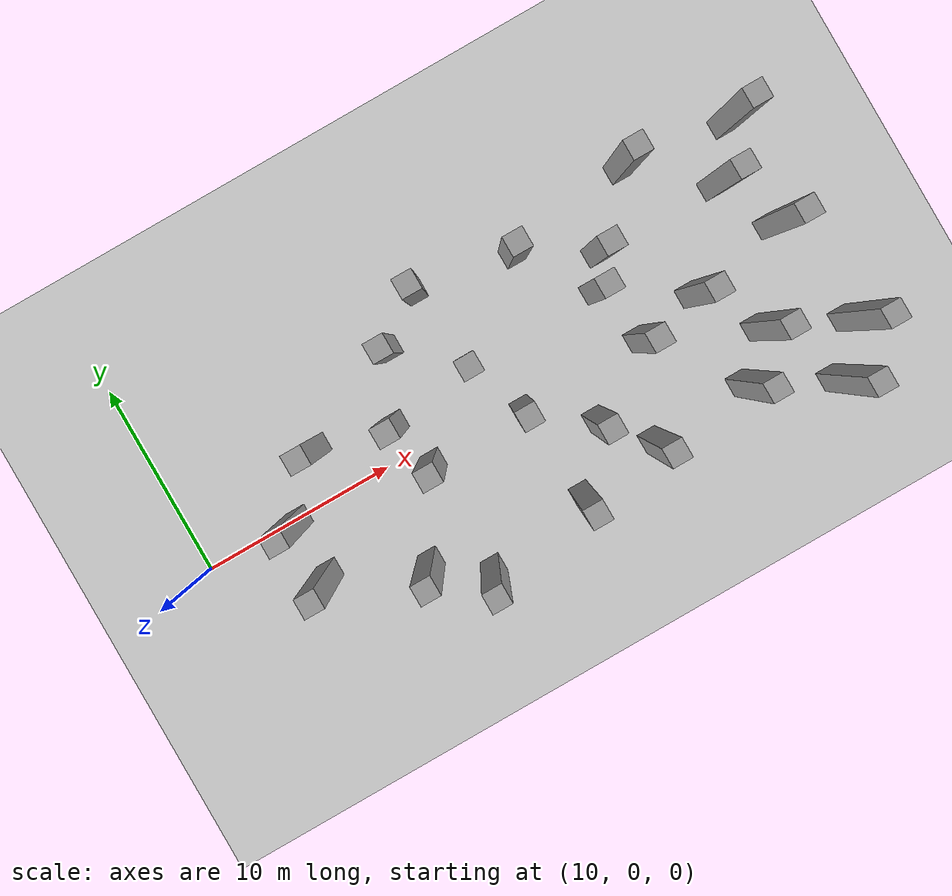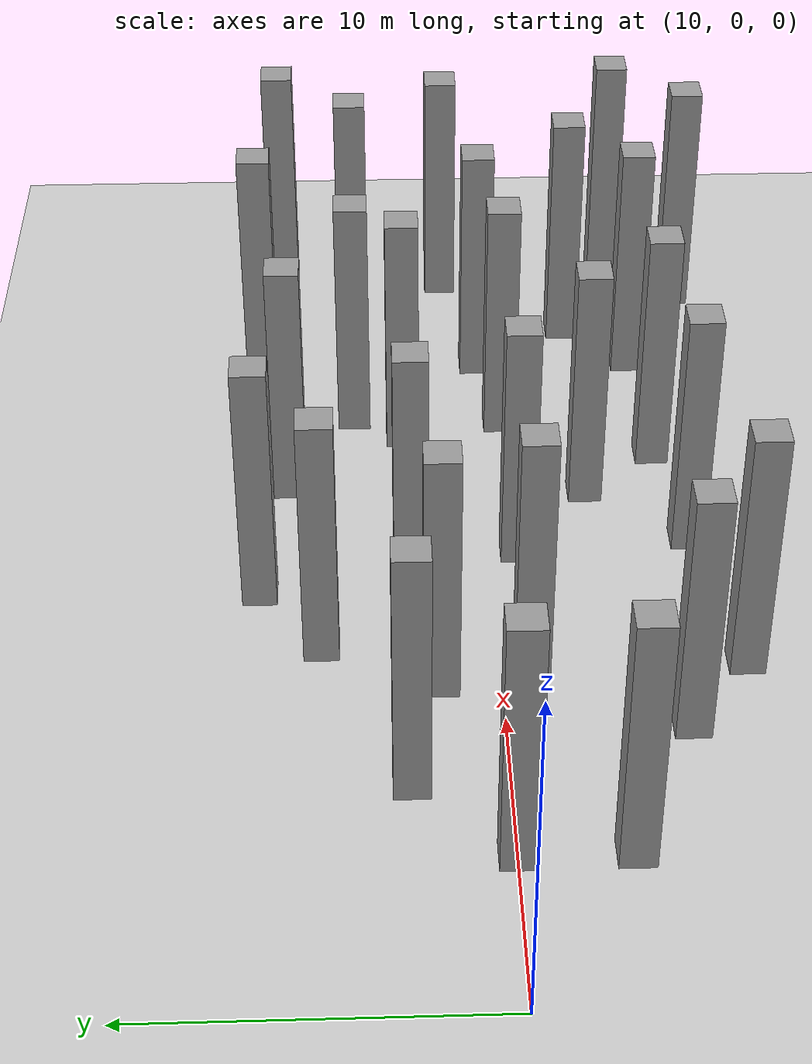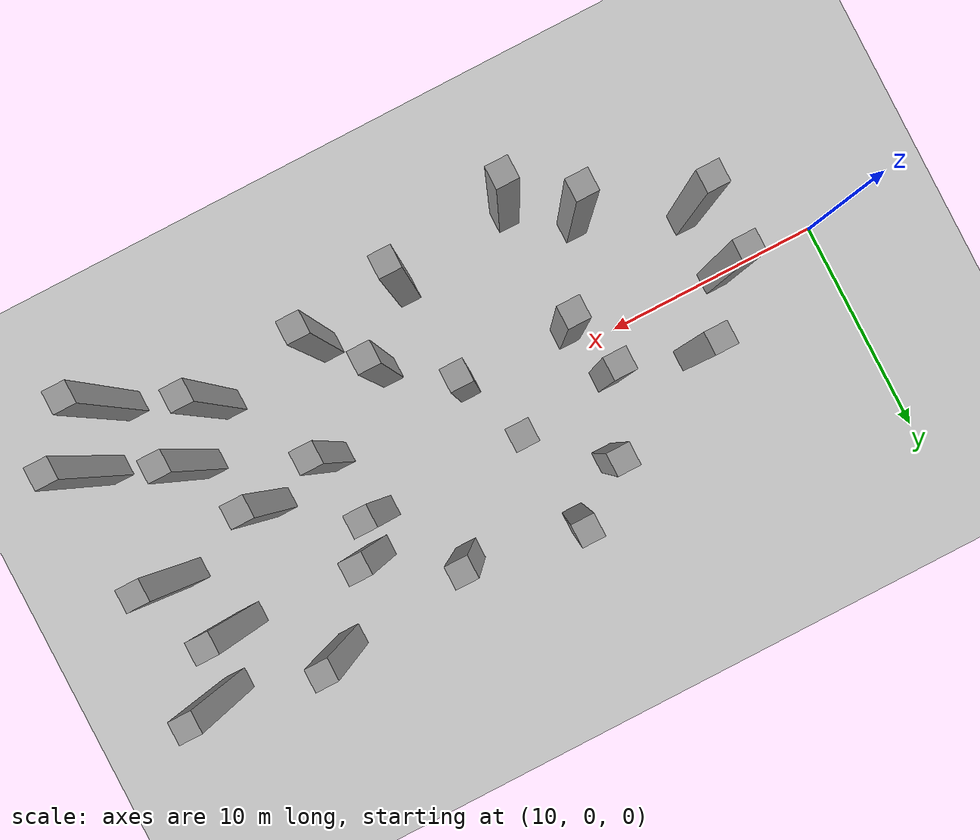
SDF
<sdf version="1.7">
 <world name="default">
  <model name="ground_plane">
   <static>1</static>
   <link name="link">
    <collision name="collision">
     <geometry><plane><normal>0 0 1</normal><size>100 100</size></plane></geometry>
     <surface>
      <contact><collide_bitmask>65535</collide_bitmask></contact>
      <friction><ode><mu>100</mu><mu2>50</mu2></ode></friction>
     </surface>
    </collision>
    <visual name="visual">
     <cast_shadows>0</cast_shadows>
     <geometry><plane><normal>0 0 1</normal><size>100 100</size></plane></geometry>
     <material>
      <script><uri>file://media/materials/scripts/gazebo.material</uri><name>Gazebo/Grey</name></script>
     </material>
    </visual>
   </link>
  </model>
  <model name="unit_box_static41">
   <link name="link">
    <inertial>
     <mass>1</mass>
     <inertia>
      <ixx>0.166667</ixx>
      <ixy>0</ixy>
      <ixz>0</ixz>
      <iyy>0.166667</iyy>
      <iyz>0</iyz>
      <izz>0.166667</izz>
     </inertia>
    </inertial>
    <visual name="visual">
     <geometry><box><size>1 1 8</size></box></geometry>
     <material>
      <script><name>Gazebo/Grey</name><uri>file://media/materials/scripts/gazebo.material</uri></script>
      <shader type="pixel"/>
     </material>
    </visual>
    <collision name="collision">
     <geometry><box><size>1 1 8</size></box></geometry>
     <surface>
      <friction>
       <ode><mu>1</mu><mu2>1</mu2><fdir1>0 0 0</fdir1><slip1>0</slip1><slip2>0</slip2></ode>
       <torsional>
        <coefficient>1</coefficient>
        <patch_radius>0</patch_radius>
        <surface_radius>0</surface_radius>
        <use_patch_radius>1</use_patch_radius>
        <ode><slip>0</slip></ode>
       </torsional>
      </friction>
      <bounce><restitution_coefficient>0</restitution_coefficient><threshold>1e+06</threshold></bounce>
      <contact>
       <collide_without_contact>0</collide_without_contact>
       <collide_without_contact_bitmask>1</collide_without_contact_bitmask>
       <collide_bitmask>1</collide_bitmask>
       <ode>
        <soft_cfm>0</soft_cfm>
        <soft_erp>0.2</soft_erp>
        <kp>1e+13</kp>
        <kd>1</kd>
        <max_vel>0.01</max_vel>
        <min_depth>0</min_depth>
       </ode>
       <bullet>
        <split_impulse>1</split_impulse>
        <split_impulse_penetration_threshold>-0.01</split_impulse_penetration_threshold>
        <soft_cfm>0</soft_cfm>
        <soft_erp>0.2</soft_erp>
        <kp>1e+13</kp>
        <kd>1</kd>
       </bullet>
      </contact>
     </surface>
    </collision>
   </link>
   <static>1</static>
   <pose>27.6141 -5.86345 4 0 -0 0</pose>
  </model>
  <model name="unit_box_static43">
   <link name="link">
    <inertial>
     <mass>1</mass>
     <inertia>
      <ixx>0.166667</ixx>
      <ixy>0</ixy>
      <ixz>0</ixz>
      <iyy>0.166667</iyy>
      <iyz>0</iyz>
      <izz>0.166667</izz>
     </inertia>
    </inertial>
    <visual name="visual">
     <geometry><box><size>1 1 8</size></box></geometry>
     <material>
      <script><name>Gazebo/Grey</name><uri>file://media/materials/scripts/gazebo.material</uri></script>
      <shader type="pixel"/>
     </material>
    </visual>
    <collision name="collision">
     <geometry><box><size>1 1 8</size></box></geometry>
     <surface>
      <friction>
       <ode><mu>1</mu><mu2>1</mu2><fdir1>0 0 0</fdir1><slip1>0</slip1><slip2>0</slip2></ode>
       <torsional>
        <coefficient>1</coefficient>
        <patch_radius>0</patch_radius>
        <surface_radius>0</surface_radius>
        <use_patch_radius>1</use_patch_radius>
        <ode><slip>0</slip></ode>
       </torsional>
      </friction>
      <bounce><restitution_coefficient>0</restitution_coefficient><threshold>1e+06</threshold></bounce>
      <contact>
       <collide_without_contact>0</collide_without_contact>
       <collide_without_contact_bitmask>1</collide_without_contact_bitmask>
       <collide_bitmask>1</collide_bitmask>
       <ode>
        <soft_cfm>0</soft_cfm>
        <soft_erp>0.2</soft_erp>
        <kp>1e+13</kp>
        <kd>1</kd>
        <max_vel>0.01</max_vel>
        <min_depth>0</min_depth>
       </ode>
       <bullet>
        <split_impulse>1</split_impulse>
        <split_impulse_penetration_threshold>-0.01</split_impulse_penetration_threshold>
        <soft_cfm>0</soft_cfm>
        <soft_erp>0.2</soft_erp>
        <kp>1e+13</kp>
        <kd>1</kd>
       </bullet>
      </contact>
     </surface>
    </collision>
   </link>
   <static>1</static>
   <pose>25.4458 6.78885 4 0 -0 0</pose>
  </model>
  <model name="unit_box_static44">
   <link name="link">
    <inertial>
     <mass>1</mass>
     <inertia>
      <ixx>0.166667</ixx>
      <ixy>0</ixy>
      <ixz>0</ixz>
      <iyy>0.166667</iyy>
      <iyz>0</iyz>
      <izz>0.166667</izz>
     </inertia>
    </inertial>
    <visual name="visual">
     <geometry><box><size>1 1 8</size></box></geometry>
     <material>
      <script><name>Gazebo/Grey</name><uri>file://media/materials/scripts/gazebo.material</uri></script>
      <shader type="pixel"/>
     </material>
    </visual>
    <collision name="collision">
     <geometry><box><size>1 1 8</size></box></geometry>
     <surface>
      <friction>
       <ode><mu>1</mu><mu2>1</mu2><fdir1>0 0 0</fdir1><slip1>0</slip1><slip2>0</slip2></ode>
       <torsional>
        <coefficient>1</coefficient>
        <patch_radius>0</patch_radius>
        <surface_radius>0</surface_radius>
        <use_patch_radius>1</use_patch_radius>
        <ode><slip>0</slip></ode>
       </torsional>
      </friction>
      <bounce><restitution_coefficient>0</restitution_coefficient><threshold>1e+06</threshold></bounce>
      <contact>
       <collide_without_contact>0</collide_without_contact>
       <collide_without_contact_bitmask>1</collide_without_contact_bitmask>
       <collide_bitmask>1</collide_bitmask>
       <ode>
        <soft_cfm>0</soft_cfm>
        <soft_erp>0.2</soft_erp>
        <kp>1e+13</kp>
        <kd>1</kd>
        <max_vel>0.01</max_vel>
        <min_depth>0</min_depth>
       </ode>
       <bullet>
        <split_impulse>1</split_impulse>
        <split_impulse_penetration_threshold>-0.01</split_impulse_penetration_threshold>
        <soft_cfm>0</soft_cfm>
        <soft_erp>0.2</soft_erp>
        <kp>1e+13</kp>
        <kd>1</kd>
       </bullet>
      </contact>
     </surface>
    </collision>
   </link>
   <static>1</static>
   <pose>22.0991 -0.844058 4 0 -0 0</pose>
  </model>
  <model name="unit_box_static42_clone_10">
   <link name="link">
    <inertial>
     <mass>1</mass>
     <inertia>
      <ixx>0.166667</ixx>
      <ixy>0</ixy>
      <ixz>0</ixz>
      <iyy>0.166667</iyy>
      <iyz>0</iyz>
      <izz>0.166667</izz>
     </inertia>
    </inertial>
    <visual name="visual">
     <geometry><box><size>1 1 8</size></box></geometry>
     <material>
      <script><name>Gazebo/Grey</name><uri>file://media/materials/scripts/gazebo.material</uri></script>
      <shader type="pixel"/>
     </material>
    </visual>
    <collision name="collision">
     <geometry><box><size>1 1 8</size></box></geometry>
     <surface>
      <friction>
       <ode><mu>1</mu><mu2>1</mu2><fdir1>0 0 0</fdir1><slip1>0</slip1><slip2>0</slip2></ode>
       <torsional>
        <coefficient>1</coefficient>
        <patch_radius>0</patch_radius>
        <surface_radius>0</surface_radius>
        <use_patch_radius>1</use_patch_radius>
        <ode><slip>0</slip></ode>
       </torsional>
      </friction>
      <bounce><restitution_coefficient>0</restitution_coefficient><threshold>1e+06</threshold></bounce>
      <contact>
       <collide_without_contact>0</collide_without_contact>
       <collide_without_contact_bitmask>1</collide_without_contact_bitmask>
       <collide_bitmask>1</collide_bitmask>
       <ode>
        <soft_cfm>0</soft_cfm>
        <soft_erp>0.2</soft_erp>
        <kp>1e+13</kp>
        <kd>1</kd>
        <max_vel>0.01</max_vel>
        <min_depth>0</min_depth>
       </ode>
       <bullet>
        <split_impulse>1</split_impulse>
        <split_impulse_penetration_threshold>-0.01</split_impulse_penetration_threshold>
        <soft_cfm>0</soft_cfm>
        <soft_erp>0.2</soft_erp>
        <kp>1e+13</kp>
        <kd>1</kd>
       </bullet>
      </contact>
     </surface>
    </collision>
   </link>
   <static>1</static>
   <pose>15 -3 4 0 -0 0</pose>
  </model>
  <model name="unit_box_static42_clone_11">
   <link name="link">
    <inertial>
     <mass>1</mass>
     <inertia>
      <ixx>0.166667</ixx>
      <ixy>0</ixy>
      <ixz>0</ixz>
      <iyy>0.166667</iyy>
      <iyz>0</iyz>
      <izz>0.166667</izz>
     </inertia>
    </inertial>
    <visual name="visual">
     <geometry><box><size>1 1 8</size></box></geometry>
     <material>
      <script><name>Gazebo/Grey</name><uri>file://media/materials/scripts/gazebo.material</uri></script>
      <shader type="pixel"/>
     </material>
    </visual>
    <collision name="collision">
     <geometry><box><size>1 1 8</size></box></geometry>
     <surface>
      <friction>
       <ode><mu>1</mu><mu2>1</mu2><fdir1>0 0 0</fdir1><slip1>0</slip1><slip2>0</slip2></ode>
       <torsional>
        <coefficient>1</coefficient>
        <patch_radius>0</patch_radius>
        <surface_radius>0</surface_radius>
        <use_patch_radius>1</use_patch_radius>
        <ode><slip>0</slip></ode>
       </torsional>
      </friction>
      <bounce><restitution_coefficient>0</restitution_coefficient><threshold>1e+06</threshold></bounce>
      <contact>
       <collide_without_contact>0</collide_without_contact>
       <collide_without_contact_bitmask>1</collide_without_contact_bitmask>
       <collide_bitmask>1</collide_bitmask>
       <ode>
        <soft_cfm>0</soft_cfm>
        <soft_erp>0.2</soft_erp>
        <kp>1e+13</kp>
        <kd>1</kd>
        <max_vel>0.01</max_vel>
        <min_depth>0</min_depth>
       </ode>
       <bullet>
        <split_impulse>1</split_impulse>
        <split_impulse_penetration_threshold>-0.01</split_impulse_penetration_threshold>
        <soft_cfm>0</soft_cfm>
        <soft_erp>0.2</soft_erp>
        <kp>1e+13</kp>
        <kd>1</kd>
       </bullet>
      </contact>
     </surface>
    </collision>
   </link>
   <static>1</static>
   <pose>30 -3 4 0 -0 0</pose>
  </model>
  <model name="unit_box_static42_clone_12">
   <link name="link">
    <inertial>
     <mass>1</mass>
     <inertia>
      <ixx>0.166667</ixx>
      <ixy>0</ixy>
      <ixz>0</ixz>
      <iyy>0.166667</iyy>
      <iyz>0</iyz>
      <izz>0.166667</izz>
     </inertia>
    </inertial>
    <visual name="visual">
     <geometry><box><size>1 1 8</size></box></geometry>
     <material>
      <script><name>Gazebo/Grey</name><uri>file://media/materials/scripts/gazebo.material</uri></script>
      <shader type="pixel"/>
     </material>
    </visual>
    <collision name="collision">
     <geometry><box><size>1 1 8</size></box></geometry>
     <surface>
      <friction>
       <ode><mu>1</mu><mu2>1</mu2><fdir1>0 0 0</fdir1><slip1>0</slip1><slip2>0</slip2></ode>
       <torsional>
        <coefficient>1</coefficient>
        <patch_radius>0</patch_radius>
        <surface_radius>0</surface_radius>
        <use_patch_radius>1</use_patch_radius>
        <ode><slip>0</slip></ode>
       </torsional>
      </friction>
      <bounce><restitution_coefficient>0</restitution_coefficient><threshold>1e+06</threshold></bounce>
      <contact>
       <collide_without_contact>0</collide_without_contact>
       <collide_without_contact_bitmask>1</collide_without_contact_bitmask>
       <collide_bitmask>1</collide_bitmask>
       <ode>
        <soft_cfm>0</soft_cfm>
        <soft_erp>0.2</soft_erp>
        <kp>1e+13</kp>
        <kd>1</kd>
        <max_vel>0.01</max_vel>
        <min_depth>0</min_depth>
       </ode>
       <bullet>
        <split_impulse>1</split_impulse>
        <split_impulse_penetration_threshold>-0.01</split_impulse_penetration_threshold>
        <soft_cfm>0</soft_cfm>
        <soft_erp>0.2</soft_erp>
        <kp>1e+13</kp>
        <kd>1</kd>
       </bullet>
      </contact>
     </surface>
    </collision>
   </link>
   <static>1</static>
   <pose>23 5 4 0 -0 0</pose>
  </model>
  <model name="unit_box_static42_clone_13">
   <link name="link">
    <inertial>
     <mass>1</mass>
     <inertia>
      <ixx>0.166667</ixx>
      <ixy>0</ixy>
      <ixz>0</ixz>
      <iyy>0.166667</iyy>
      <iyz>0</iyz>
      <izz>0.166667</izz>
     </inertia>
    </inertial>
    <visual name="visual">
     <geometry><box><size>1 1 8</size></box></geometry>
     <material>
      <script><name>Gazebo/Grey</name><uri>file://media/materials/scripts/gazebo.material</uri></script>
      <shader type="pixel"/>
     </material>
    </visual>
    <collision name="collision">
     <geometry><box><size>1 1 8</size></box></geometry>
     <surface>
      <friction>
       <ode><mu>1</mu><mu2>1</mu2><fdir1>0 0 0</fdir1><slip1>0</slip1><slip2>0</slip2></ode>
       <torsional>
        <coefficient>1</coefficient>
        <patch_radius>0</patch_radius>
        <surface_radius>0</surface_radius>
        <use_patch_radius>1</use_patch_radius>
        <ode><slip>0</slip></ode>
       </torsional>
      </friction>
      <bounce><restitution_coefficient>0</restitution_coefficient><threshold>1e+06</threshold></bounce>
      <contact>
       <collide_without_contact>0</collide_without_contact>
       <collide_without_contact_bitmask>1</collide_without_contact_bitmask>
       <collide_bitmask>1</collide_bitmask>
       <ode>
        <soft_cfm>0</soft_cfm>
        <soft_erp>0.2</soft_erp>
        <kp>1e+13</kp>
        <kd>1</kd>
        <max_vel>0.01</max_vel>
        <min_depth>0</min_depth>
       </ode>
       <bullet>
        <split_impulse>1</split_impulse>
        <split_impulse_penetration_threshold>-0.01</split_impulse_penetration_threshold>
        <soft_cfm>0</soft_cfm>
        <soft_erp>0.2</soft_erp>
        <kp>1e+13</kp>
        <kd>1</kd>
       </bullet>
      </contact>
     </surface>
    </collision>
   </link>
   <static>1</static>
   <pose>26 2.40732 4 0 -0 0</pose>
  </model>
  <model name="unit_box_static42_clone_14">
   <link name="link">
    <inertial>
     <mass>1</mass>
     <inertia>
      <ixx>0.166667</ixx>
      <ixy>0</ixy>
      <ixz>0</ixz>
      <iyy>0.166667</iyy>
      <iyz>0</iyz>
      <izz>0.166667</izz>
     </inertia>
    </inertial>
    <visual name="visual">
     <geometry><box><size>1 1 8</size></box></geometry>
     <material>
      <script><name>Gazebo/Grey</name><uri>file://media/materials/scripts/gazebo.material</uri></script>
      <shader type="pixel"/>
     </material>
    </visual>
    <collision name="collision">
     <geometry><box><size>1 1 8</size></box></geometry>
     <surface>
      <friction>
       <ode><mu>1</mu><mu2>1</mu2><fdir1>0 0 0</fdir1><slip1>0</slip1><slip2>0</slip2></ode>
       <torsional>
        <coefficient>1</coefficient>
        <patch_radius>0</patch_radius>
        <surface_radius>0</surface_radius>
        <use_patch_radius>1</use_patch_radius>
        <ode><slip>0</slip></ode>
       </torsional>
      </friction>
      <bounce><restitution_coefficient>0</restitution_coefficient><threshold>1e+06</threshold></bounce>
      <contact>
       <collide_without_contact>0</collide_without_contact>
       <collide_without_contact_bitmask>1</collide_without_contact_bitmask>
       <collide_bitmask>1</collide_bitmask>
       <ode>
        <soft_cfm>0</soft_cfm>
        <soft_erp>0.2</soft_erp>
        <kp>1e+13</kp>
        <kd>1</kd>
        <max_vel>0.01</max_vel>
        <min_depth>0</min_depth>
       </ode>
       <bullet>
        <split_impulse>1</split_impulse>
        <split_impulse_penetration_threshold>-0.01</split_impulse_penetration_threshold>
        <soft_cfm>0</soft_cfm>
        <soft_erp>0.2</soft_erp>
        <kp>1e+13</kp>
        <kd>1</kd>
       </bullet>
      </contact>
     </surface>
    </collision>
   </link>
   <static>1</static>
   <pose>15 0 4 0 -0 0</pose>
  </model>
  <model name="unit_box_static42_clone_33">
   <link name="link">
    <inertial>
     <mass>1</mass>
     <inertia>
      <ixx>0.166667</ixx>
      <ixy>0</ixy>
      <ixz>0</ixz>
      <iyy>0.166667</iyy>
      <iyz>0</iyz>
      <izz>0.166667</izz>
     </inertia>
    </inertial>
    <visual name="visual">
     <geometry><box><size>1 1 8</size></box></geometry>
     <material>
      <script><name>Gazebo/Grey</name><uri>file://media/materials/scripts/gazebo.material</uri></script>
      <shader type="pixel"/>
     </material>
    </visual>
    <collision name="collision">
     <geometry><box><size>1 1 8</size></box></geometry>
     <surface>
      <friction>
       <ode><mu>1</mu><mu2>1</mu2><fdir1>0 0 0</fdir1><slip1>0</slip1><slip2>0</slip2></ode>
       <torsional>
        <coefficient>1</coefficient>
        <patch_radius>0</patch_radius>
        <surface_radius>0</surface_radius>
        <use_patch_radius>1</use_patch_radius>
        <ode><slip>0</slip></ode>
       </torsional>
      </friction>
      <bounce><restitution_coefficient>0</restitution_coefficient><threshold>1e+06</threshold></bounce>
      <contact>
       <collide_without_contact>0</collide_without_contact>
       <collide_without_contact_bitmask>1</collide_without_contact_bitmask>
       <collide_bitmask>1</collide_bitmask>
       <ode>
        <soft_cfm>0</soft_cfm>
        <soft_erp>0.2</soft_erp>
        <kp>1e+13</kp>
        <kd>1</kd>
        <max_vel>0.01</max_vel>
        <min_depth>0</min_depth>
       </ode>
       <bullet>
        <split_impulse>1</split_impulse>
        <split_impulse_penetration_threshold>-0.01</split_impulse_penetration_threshold>
        <soft_cfm>0</soft_cfm>
        <soft_erp>0.2</soft_erp>
        <kp>1e+13</kp>
        <kd>1</kd>
       </bullet>
      </contact>
     </surface>
    </collision>
   </link>
   <static>1</static>
   <pose>22.0812 -6.82551 4 0 -0 0</pose>
  </model>
  <model name="unit_box_static42_clone_34">
   <link name="link">
    <inertial>
     <mass>1</mass>
     <inertia>
      <ixx>0.166667</ixx>
      <ixy>0</ixy>
      <ixz>0</ixz>
      <iyy>0.166667</iyy>
      <iyz>0</iyz>
      <izz>0.166667</izz>
     </inertia>
    </inertial>
    <visual name="visual">
     <geometry><box><size>1 1 8</size></box></geometry>
     <material>
      <script><name>Gazebo/Grey</name><uri>file://media/materials/scripts/gazebo.material</uri></script>
      <shader type="pixel"/>
     </material>
    </visual>
    <collision name="collision">
     <geometry><box><size>1 1 8</size></box></geometry>
     <surface>
      <friction>
       <ode><mu>1</mu><mu2>1</mu2><fdir1>0 0 0</fdir1><slip1>0</slip1><slip2>0</slip2></ode>
       <torsional>
        <coefficient>1</coefficient>
        <patch_radius>0</patch_radius>
        <surface_radius>0</surface_radius>
        <use_patch_radius>1</use_patch_radius>
        <ode><slip>0</slip></ode>
       </torsional>
      </friction>
      <bounce><restitution_coefficient>0</restitution_coefficient><threshold>1e+06</threshold></bounce>
      <contact>
       <collide_without_contact>0</collide_without_contact>
       <collide_without_contact_bitmask>1</collide_without_contact_bitmask>
       <collide_bitmask>1</collide_bitmask>
       <ode>
        <soft_cfm>0</soft_cfm>
        <soft_erp>0.2</soft_erp>
        <kp>1e+13</kp>
        <kd>1</kd>
        <max_vel>0.01</max_vel>
        <min_depth>0</min_depth>
       </ode>
       <bullet>
        <split_impulse>1</split_impulse>
        <split_impulse_penetration_threshold>-0.01</split_impulse_penetration_threshold>
        <soft_cfm>0</soft_cfm>
        <soft_erp>0.2</soft_erp>
        <kp>1e+13</kp>
        <kd>1</kd>
       </bullet>
      </contact>
     </surface>
    </collision>
   </link>
   <static>1</static>
   <pose>19.589 -5 4 0 -0 0</pose>
  </model>
  <model name="unit_box_static42_clone_35">
   <link name="link">
    <inertial>
     <mass>1</mass>
     <inertia>
      <ixx>0.166667</ixx>
      <ixy>0</ixy>
      <ixz>0</ixz>
      <iyy>0.166667</iyy>
      <iyz>0</iyz>
      <izz>0.166667</izz>
     </inertia>
    </inertial>
    <visual name="visual">
     <geometry><box><size>1 1 8</size></box></geometry>
     <material>
      <script><name>Gazebo/Grey</name><uri>file://media/materials/scripts/gazebo.material</uri></script>
      <shader type="pixel"/>
     </material>
    </visual>
    <collision name="collision">
     <geometry><box><size>1 1 8</size></box></geometry>
     <surface>
      <friction>
       <ode><mu>1</mu><mu2>1</mu2><fdir1>0 0 0</fdir1><slip1>0</slip1><slip2>0</slip2></ode>
       <torsional>
        <coefficient>1</coefficient>
        <patch_radius>0</patch_radius>
        <surface_radius>0</surface_radius>
        <use_patch_radius>1</use_patch_radius>
        <ode><slip>0</slip></ode>
       </torsional>
      </friction>
      <bounce><restitution_coefficient>0</restitution_coefficient><threshold>1e+06</threshold></bounce>
      <contact>
       <collide_without_contact>0</collide_without_contact>
       <collide_without_contact_bitmask>1</collide_without_contact_bitmask>
       <collide_bitmask>1</collide_bitmask>
       <ode>
        <soft_cfm>0</soft_cfm>
        <soft_erp>0.2</soft_erp>
        <kp>1e+13</kp>
        <kd>1</kd>
        <max_vel>0.01</max_vel>
        <min_depth>0</min_depth>
       </ode>
       <bullet>
        <split_impulse>1</split_impulse>
        <split_impulse_penetration_threshold>-0.01</split_impulse_penetration_threshold>
        <soft_cfm>0</soft_cfm>
        <soft_erp>0.2</soft_erp>
        <kp>1e+13</kp>
        <kd>1</kd>
       </bullet>
      </contact>
     </surface>
    </collision>
   </link>
   <static>1</static>
   <pose>34 4 4 0 -0 0</pose>
  </model>
  <model name="unit_box_static42_clone_36">
   <link name="link">
    <inertial>
     <mass>1</mass>
     <inertia>
      <ixx>0.166667</ixx>
      <ixy>0</ixy>
      <ixz>0</ixz>
      <iyy>0.166667</iyy>
      <iyz>0</iyz>
      <izz>0.166667</izz>
     </inertia>
    </inertial>
    <visual name="visual">
     <geometry><box><size>1 1 8</size></box></geometry>
     <material>
      <script><name>Gazebo/Grey</name><uri>file://media/materials/scripts/gazebo.material</uri></script>
      <shader type="pixel"/>
     </material>
    </visual>
    <collision name="collision">
     <geometry><box><size>1 1 8</size></box></geometry>
     <surface>
      <friction>
       <ode><mu>1</mu><mu2>1</mu2><fdir1>0 0 0</fdir1><slip1>0</slip1><slip2>0</slip2></ode>
       <torsional>
        <coefficient>1</coefficient>
        <patch_radius>0</patch_radius>
        <surface_radius>0</surface_radius>
        <use_patch_radius>1</use_patch_radius>
        <ode><slip>0</slip></ode>
       </torsional>
      </friction>
      <bounce><restitution_coefficient>0</restitution_coefficient><threshold>1e+06</threshold></bounce>
      <contact>
       <collide_without_contact>0</collide_without_contact>
       <collide_without_contact_bitmask>1</collide_without_contact_bitmask>
       <collide_bitmask>1</collide_bitmask>
       <ode>
        <soft_cfm>0</soft_cfm>
        <soft_erp>0.2</soft_erp>
        <kp>1e+13</kp>
        <kd>1</kd>
        <max_vel>0.01</max_vel>
        <min_depth>0</min_depth>
       </ode>
       <bullet>
        <split_impulse>1</split_impulse>
        <split_impulse_penetration_threshold>-0.01</split_impulse_penetration_threshold>
        <soft_cfm>0</soft_cfm>
        <soft_erp>0.2</soft_erp>
        <kp>1e+13</kp>
        <kd>1</kd>
       </bullet>
      </contact>
     </surface>
    </collision>
   </link>
   <static>1</static>
   <pose>33 2.48637 4 0 -0 0</pose>
  </model>
  <model name="unit_box_static42_clone_37">
   <link name="link">
    <inertial>
     <mass>1</mass>
     <inertia>
      <ixx>0.166667</ixx>
      <ixy>0</ixy>
      <ixz>0</ixz>
      <iyy>0.166667</iyy>
      <iyz>0</iyz>
      <izz>0.166667</izz>
     </inertia>
    </inertial>
    <visual name="visual">
     <geometry><box><size>1 1 8</size></box></geometry>
     <material>
      <script><name>Gazebo/Grey</name><uri>file://media/materials/scripts/gazebo.material</uri></script>
      <shader type="pixel"/>
     </material>
    </visual>
    <collision name="collision">
     <geometry><box><size>1 1 8</size></box></geometry>
     <surface>
      <friction>
       <ode><mu>1</mu><mu2>1</mu2><fdir1>0 0 0</fdir1><slip1>0</slip1><slip2>0</slip2></ode>
       <torsional>
        <coefficient>1</coefficient>
        <patch_radius>0</patch_radius>
        <surface_radius>0</surface_radius>
        <use_patch_radius>1</use_patch_radius>
        <ode><slip>0</slip></ode>
       </torsional>
      </friction>
      <bounce><restitution_coefficient>0</restitution_coefficient><threshold>1e+06</threshold></bounce>
      <contact>
       <collide_without_contact>0</collide_without_contact>
       <collide_without_contact_bitmask>1</collide_without_contact_bitmask>
       <collide_bitmask>1</collide_bitmask>
       <ode>
        <soft_cfm>0</soft_cfm>
        <soft_erp>0.2</soft_erp>
        <kp>1e+13</kp>
        <kd>1</kd>
        <max_vel>0.01</max_vel>
        <min_depth>0</min_depth>
       </ode>
       <bullet>
        <split_impulse>1</split_impulse>
        <split_impulse_penetration_threshold>-0.01</split_impulse_penetration_threshold>
        <soft_cfm>0</soft_cfm>
        <soft_erp>0.2</soft_erp>
        <kp>1e+13</kp>
        <kd>1</kd>
       </bullet>
      </contact>
     </surface>
    </collision>
   </link>
   <static>1</static>
   <pose>37 0 4 0 -0 0</pose>
  </model>
  <model name="unit_box_static42_clone_38">
   <link name="link">
    <inertial>
     <mass>1</mass>
     <inertia>
      <ixx>0.166667</ixx>
      <ixy>0</ixy>
      <ixz>0</ixz>
      <iyy>0.166667</iyy>
      <iyz>0</iyz>
      <izz>0.166667</izz>
     </inertia>
    </inertial>
    <visual name="visual">
     <geometry><box><size>1 1 8</size></box></geometry>
     <material>
      <script><name>Gazebo/Grey</name><uri>file://media/materials/scripts/gazebo.material</uri></script>
      <shader type="pixel"/>
     </material>
    </visual>
    <collision name="collision">
     <geometry><box><size>1 1 8</size></box></geometry>
     <surface>
      <friction>
       <ode><mu>1</mu><mu2>1</mu2><fdir1>0 0 0</fdir1><slip1>0</slip1><slip2>0</slip2></ode>
       <torsional>
        <coefficient>1</coefficient>
        <patch_radius>0</patch_radius>
        <surface_radius>0</surface_radius>
        <use_patch_radius>1</use_patch_radius>
        <ode><slip>0</slip></ode>
       </torsional>
      </friction>
      <bounce><restitution_coefficient>0</restitution_coefficient><threshold>1e+06</threshold></bounce>
      <contact>
       <collide_without_contact>0</collide_without_contact>
       <collide_without_contact_bitmask>1</collide_without_contact_bitmask>
       <collide_bitmask>1</collide_bitmask>
       <ode>
        <soft_cfm>0</soft_cfm>
        <soft_erp>0.2</soft_erp>
        <kp>1e+13</kp>
        <kd>1</kd>
        <max_vel>0.01</max_vel>
        <min_depth>0</min_depth>
       </ode>
       <bullet>
        <split_impulse>1</split_impulse>
        <split_impulse_penetration_threshold>-0.01</split_impulse_penetration_threshold>
        <soft_cfm>0</soft_cfm>
        <soft_erp>0.2</soft_erp>
        <kp>1e+13</kp>
        <kd>1</kd>
       </bullet>
      </contact>
     </surface>
    </collision>
   </link>
   <static>1</static>
   <pose>27.178 -0.770525 4 0 -0 0</pose>
  </model>
  <model name="unit_box_static42_clone_37_clone">
   <link name="link">
    <inertial>
     <mass>1</mass>
     <inertia>
      <ixx>0.166667</ixx>
      <ixy>0</ixy>
      <ixz>0</ixz>
      <iyy>0.166667</iyy>
      <iyz>0</iyz>
      <izz>0.166667</izz>
     </inertia>
    </inertial>
    <visual name="visual">
     <geometry><box><size>1 1 8</size></box></geometry>
     <material>
      <script><name>Gazebo/Grey</name><uri>file://media/materials/scripts/gazebo.material</uri></script>
      <shader type="pixel"/>
     </material>
    </visual>
    <collision name="collision">
     <geometry><box><size>1 1 8</size></box></geometry>
     <surface>
      <friction>
       <ode><mu>1</mu><mu2>1</mu2><fdir1>0 0 0</fdir1><slip1>0</slip1><slip2>0</slip2></ode>
       <torsional>
        <coefficient>1</coefficient>
        <patch_radius>0</patch_radius>
        <surface_radius>0</surface_radius>
        <use_patch_radius>1</use_patch_radius>
        <ode><slip>0</slip></ode>
       </torsional>
      </friction>
      <bounce><restitution_coefficient>0</restitution_coefficient><threshold>1e+06</threshold></bounce>
      <contact>
       <collide_without_contact>0</collide_without_contact>
       <collide_without_contact_bitmask>1</collide_without_contact_bitmask>
       <collide_bitmask>1</collide_bitmask>
       <ode>
        <soft_cfm>0</soft_cfm>
        <soft_erp>0.2</soft_erp>
        <kp>1e+13</kp>
        <kd>1</kd>
        <max_vel>0.01</max_vel>
        <min_depth>0</min_depth>
       </ode>
       <bullet>
        <split_impulse>1</split_impulse>
        <split_impulse_penetration_threshold>-0.01</split_impulse_penetration_threshold>
        <soft_cfm>0</soft_cfm>
        <soft_erp>0.2</soft_erp>
        <kp>1e+13</kp>
        <kd>1</kd>
       </bullet>
      </contact>
     </surface>
    </collision>
   </link>
   <static>1</static>
   <pose>37 -5 4 0 -0 0</pose>
  </model>
  <model name="unit_box_static42_clone_37_clone_0">
   <link name="link">
    <inertial>
     <mass>1</mass>
     <inertia>
      <ixx>0.166667</ixx>
      <ixy>0</ixy>
      <ixz>0</ixz>
      <iyy>0.166667</iyy>
      <iyz>0</iyz>
      <izz>0.166667</izz>
     </inertia>
    </inertial>
    <visual name="visual">
     <geometry><box><size>1 1 8</size></box></geometry>
     <material>
      <script><name>Gazebo/Grey</name><uri>file://media/materials/scripts/gazebo.material</uri></script>
      <shader type="pixel"/>
     </material>
    </visual>
    <collision name="collision">
     <geometry><box><size>1 1 8</size></box></geometry>
     <surface>
      <friction>
       <ode><mu>1</mu><mu2>1</mu2><fdir1>0 0 0</fdir1><slip1>0</slip1><slip2>0</slip2></ode>
       <torsional>
        <coefficient>1</coefficient>
        <patch_radius>0</patch_radius>
        <surface_radius>0</surface_radius>
        <use_patch_radius>1</use_patch_radius>
        <ode><slip>0</slip></ode>
       </torsional>
      </friction>
      <bounce><restitution_coefficient>0</restitution_coefficient><threshold>1e+06</threshold></bounce>
      <contact>
       <collide_without_contact>0</collide_without_contact>
       <collide_without_contact_bitmask>1</collide_without_contact_bitmask>
       <collide_bitmask>1</collide_bitmask>
       <ode>
        <soft_cfm>0</soft_cfm>
        <soft_erp>0.2</soft_erp>
        <kp>1e+13</kp>
        <kd>1</kd>
        <max_vel>0.01</max_vel>
        <min_depth>0</min_depth>
       </ode>
       <bullet>
        <split_impulse>1</split_impulse>
        <split_impulse_penetration_threshold>-0.01</split_impulse_penetration_threshold>
        <soft_cfm>0</soft_cfm>
        <soft_erp>0.2</soft_erp>
        <kp>1e+13</kp>
        <kd>1</kd>
       </bullet>
      </contact>
     </surface>
    </collision>
   </link>
   <static>1</static>
   <pose>39 -3 4 0 -0 0</pose>
  </model>
  <model name="unit_box_static42_clone_37_clone_1">
   <link name="link">
    <inertial>
     <mass>1</mass>
     <inertia>
      <ixx>0.166667</ixx>
      <ixy>0</ixy>
      <ixz>0</ixz>
      <iyy>0.166667</iyy>
      <iyz>0</iyz>
      <izz>0.166667</izz>
     </inertia>
    </inertial>
    <visual name="visual">
     <geometry><box><size>1 1 8</size></box></geometry>
     <material>
      <script><name>Gazebo/Grey</name><uri>file://media/materials/scripts/gazebo.material</uri></script>
      <shader type="pixel"/>
     </material>
    </visual>
    <collision name="collision">
     <geometry><box><size>1 1 8</size></box></geometry>
     <surface>
      <friction>
       <ode><mu>1</mu><mu2>1</mu2><fdir1>0 0 0</fdir1><slip1>0</slip1><slip2>0</slip2></ode>
       <torsional>
        <coefficient>1</coefficient>
        <patch_radius>0</patch_radius>
        <surface_radius>0</surface_radius>
        <use_patch_radius>1</use_patch_radius>
        <ode><slip>0</slip></ode>
       </torsional>
      </friction>
      <bounce><restitution_coefficient>0</restitution_coefficient><threshold>1e+06</threshold></bounce>
      <contact>
       <collide_without_contact>0</collide_without_contact>
       <collide_without_contact_bitmask>1</collide_without_contact_bitmask>
       <collide_bitmask>1</collide_bitmask>
       <ode>
        <soft_cfm>0</soft_cfm>
        <soft_erp>0.2</soft_erp>
        <kp>1e+13</kp>
        <kd>1</kd>
        <max_vel>0.01</max_vel>
        <min_depth>0</min_depth>
       </ode>
       <bullet>
        <split_impulse>1</split_impulse>
        <split_impulse_penetration_threshold>-0.01</split_impulse_penetration_threshold>
        <soft_cfm>0</soft_cfm>
        <soft_erp>0.2</soft_erp>
        <kp>1e+13</kp>
        <kd>1</kd>
       </bullet>
      </contact>
     </surface>
    </collision>
   </link>
   <static>1</static>
   <pose>40.5737 4 4 0 -0 0</pose>
  </model>
  <model name="unit_box_static42_clone_37_clone_2">
   <link name="link">
    <inertial>
     <mass>1</mass>
     <inertia>
      <ixx>0.166667</ixx>
      <ixy>0</ixy>
      <ixz>0</ixz>
      <iyy>0.166667</iyy>
      <iyz>0</iyz>
      <izz>0.166667</izz>
     </inertia>
    </inertial>
    <visual name="visual">
     <geometry><box><size>1 1 8</size></box></geometry>
     <material>
      <script><name>Gazebo/Grey</name><uri>file://media/materials/scripts/gazebo.material</uri></script>
      <shader type="pixel"/>
     </material>
    </visual>
    <collision name="collision">
     <geometry><box><size>1 1 8</size></box></geometry>
     <surface>
      <friction>
       <ode><mu>1</mu><mu2>1</mu2><fdir1>0 0 0</fdir1><slip1>0</slip1><slip2>0</slip2></ode>
       <torsional>
        <coefficient>1</coefficient>
        <patch_radius>0</patch_radius>
        <surface_radius>0</surface_radius>
        <use_patch_radius>1</use_patch_radius>
        <ode><slip>0</slip></ode>
       </torsional>
      </friction>
      <bounce><restitution_coefficient>0</restitution_coefficient><threshold>1e+06</threshold></bounce>
      <contact>
       <collide_without_contact>0</collide_without_contact>
       <collide_without_contact_bitmask>1</collide_without_contact_bitmask>
       <collide_bitmask>1</collide_bitmask>
       <ode>
        <soft_cfm>0</soft_cfm>
        <soft_erp>0.2</soft_erp>
        <kp>1e+13</kp>
        <kd>1</kd>
        <max_vel>0.01</max_vel>
        <min_depth>0</min_depth>
       </ode>
       <bullet>
        <split_impulse>1</split_impulse>
        <split_impulse_penetration_threshold>-0.01</split_impulse_penetration_threshold>
        <soft_cfm>0</soft_cfm>
        <soft_erp>0.2</soft_erp>
        <kp>1e+13</kp>
        <kd>1</kd>
       </bullet>
      </contact>
     </surface>
    </collision>
   </link>
   <static>1</static>
   <pose>42 1 4 0 -0 0</pose>
  </model>
  <model name="unit_box_static42_clone_37_clone_3">
   <link name="link">
    <inertial>
     <mass>1</mass>
     <inertia>
      <ixx>0.166667</ixx>
      <ixy>0</ixy>
      <ixz>0</ixz>
      <iyy>0.166667</iyy>
      <iyz>0</iyz>
      <izz>0.166667</izz>
     </inertia>
    </inertial>
    <visual name="visual">
     <geometry><box><size>1 1 8</size></box></geometry>
     <material>
      <script><name>Gazebo/Grey</name><uri>file://media/materials/scripts/gazebo.material</uri></script>
      <shader type="pixel"/>
     </material>
    </visual>
    <collision name="collision">
     <geometry><box><size>1 1 8</size></box></geometry>
     <surface>
      <friction>
       <ode><mu>1</mu><mu2>1</mu2><fdir1>0 0 0</fdir1><slip1>0</slip1><slip2>0</slip2></ode>
       <torsional>
        <coefficient>1</coefficient>
        <patch_radius>0</patch_radius>
        <surface_radius>0</surface_radius>
        <use_patch_radius>1</use_patch_radius>
        <ode><slip>0</slip></ode>
       </torsional>
      </friction>
      <bounce><restitution_coefficient>0</restitution_coefficient><threshold>1e+06</threshold></bounce>
      <contact>
       <collide_without_contact>0</collide_without_contact>
       <collide_without_contact_bitmask>1</collide_without_contact_bitmask>
       <collide_bitmask>1</collide_bitmask>
       <ode>
        <soft_cfm>0</soft_cfm>
        <soft_erp>0.2</soft_erp>
        <kp>1e+13</kp>
        <kd>1</kd>
        <max_vel>0.01</max_vel>
        <min_depth>0</min_depth>
       </ode>
       <bullet>
        <split_impulse>1</split_impulse>
        <split_impulse_penetration_threshold>-0.01</split_impulse_penetration_threshold>
        <soft_cfm>0</soft_cfm>
        <soft_erp>0.2</soft_erp>
        <kp>1e+13</kp>
        <kd>1</kd>
       </bullet>
      </contact>
     </surface>
    </collision>
   </link>
   <static>1</static>
   <pose>41 -7 4 0 -0 0</pose>
  </model>
  <model name="unit_box_static42_clone_37_clone_4">
   <link name="link">
    <inertial>
     <mass>1</mass>
     <inertia>
      <ixx>0.166667</ixx>
      <ixy>0</ixy>
      <ixz>0</ixz>
      <iyy>0.166667</iyy>
      <iyz>0</iyz>
      <izz>0.166667</izz>
     </inertia>
    </inertial>
    <visual name="visual">
     <geometry><box><size>1 1 8</size></box></geometry>
     <material>
      <script><name>Gazebo/Grey</name><uri>file://media/materials/scripts/gazebo.material</uri></script>
      <shader type="pixel"/>
     </material>
    </visual>
    <collision name="collision">
     <geometry><box><size>1 1 8</size></box></geometry>
     <surface>
      <friction>
       <ode><mu>1</mu><mu2>1</mu2><fdir1>0 0 0</fdir1><slip1>0</slip1><slip2>0</slip2></ode>
       <torsional>
        <coefficient>1</coefficient>
        <patch_radius>0</patch_radius>
        <surface_radius>0</surface_radius>
        <use_patch_radius>1</use_patch_radius>
        <ode><slip>0</slip></ode>
       </torsional>
      </friction>
      <bounce><restitution_coefficient>0</restitution_coefficient><threshold>1e+06</threshold></bounce>
      <contact>
       <collide_without_contact>0</collide_without_contact>
       <collide_without_contact_bitmask>1</collide_without_contact_bitmask>
       <collide_bitmask>1</collide_bitmask>
       <ode>
        <soft_cfm>0</soft_cfm>
        <soft_erp>0.2</soft_erp>
        <kp>1e+13</kp>
        <kd>1</kd>
        <max_vel>0.01</max_vel>
        <min_depth>0</min_depth>
       </ode>
       <bullet>
        <split_impulse>1</split_impulse>
        <split_impulse_penetration_threshold>-0.01</split_impulse_penetration_threshold>
        <soft_cfm>0</soft_cfm>
        <soft_erp>0.2</soft_erp>
        <kp>1e+13</kp>
        <kd>1</kd>
       </bullet>
      </contact>
     </surface>
    </collision>
   </link>
   <static>1</static>
   <pose>31.8713 -5.25758 4 0 -0 0</pose>
  </model>
  <model name="unit_box_static42_clone_37_clone_5">
   <link name="link">
    <inertial>
     <mass>1</mass>
     <inertia>
      <ixx>0.166667</ixx>
      <ixy>0</ixy>
      <ixz>0</ixz>
      <iyy>0.166667</iyy>
      <iyz>0</iyz>
      <izz>0.166667</izz>
     </inertia>
    </inertial>
    <visual name="visual">
     <geometry><box><size>1 1 8</size></box></geometry>
     <material>
      <script><name>Gazebo/Grey</name><uri>file://media/materials/scripts/gazebo.material</uri></script>
      <shader type="pixel"/>
     </material>
    </visual>
    <collision name="collision">
     <geometry><box><size>1 1 8</size></box></geometry>
     <surface>
      <friction>
       <ode><mu>1</mu><mu2>1</mu2><fdir1>0 0 0</fdir1><slip1>0</slip1><slip2>0</slip2></ode>
       <torsional>
        <coefficient>1</coefficient>
        <patch_radius>0</patch_radius>
        <surface_radius>0</surface_radius>
        <use_patch_radius>1</use_patch_radius>
        <ode><slip>0</slip></ode>
       </torsional>
      </friction>
      <bounce><restitution_coefficient>0</restitution_coefficient><threshold>1e+06</threshold></bounce>
      <contact>
       <collide_without_contact>0</collide_without_contact>
       <collide_without_contact_bitmask>1</collide_without_contact_bitmask>
       <collide_bitmask>1</collide_bitmask>
       <ode>
        <soft_cfm>0</soft_cfm>
        <soft_erp>0.2</soft_erp>
        <kp>1e+13</kp>
        <kd>1</kd>
        <max_vel>0.01</max_vel>
        <min_depth>0</min_depth>
       </ode>
       <bullet>
        <split_impulse>1</split_impulse>
        <split_impulse_penetration_threshold>-0.01</split_impulse_penetration_threshold>
        <soft_cfm>0</soft_cfm>
        <soft_erp>0.2</soft_erp>
        <kp>1e+13</kp>
        <kd>1</kd>
       </bullet>
      </contact>
     </surface>
    </collision>
   </link>
   <static>1</static>
   <pose>37 7 4 0 -0 0</pose>
  </model>
  <model name="unit_box_static42_clone_37_clone_16">
   <link name="link">
    <inertial>
     <mass>1</mass>
     <inertia>
      <ixx>0.166667</ixx>
      <ixy>0</ixy>
      <ixz>0</ixz>
      <iyy>0.166667</iyy>
      <iyz>0</iyz>
      <izz>0.166667</izz>
     </inertia>
    </inertial>
    <visual name="visual">
     <geometry><box><size>1 1 8</size></box></geometry>
     <material>
      <script><name>Gazebo/Grey</name><uri>file://media/materials/scripts/gazebo.material</uri></script>
      <shader type="pixel"/>
     </material>
    </visual>
    <collision name="collision">
     <geometry><box><size>1 1 8</size></box></geometry>
     <surface>
      <friction>
       <ode><mu>1</mu><mu2>1</mu2><fdir1>0 0 0</fdir1><slip1>0</slip1><slip2>0</slip2></ode>
       <torsional>
        <coefficient>1</coefficient>
        <patch_radius>0</patch_radius>
        <surface_radius>0</surface_radius>
        <use_patch_radius>1</use_patch_radius>
        <ode><slip>0</slip></ode>
       </torsional>
      </friction>
      <bounce><restitution_coefficient>0</restitution_coefficient><threshold>1e+06</threshold></bounce>
      <contact>
       <collide_without_contact>0</collide_without_contact>
       <collide_without_contact_bitmask>1</collide_without_contact_bitmask>
       <collide_bitmask>1</collide_bitmask>
       <ode>
        <soft_cfm>0</soft_cfm>
        <soft_erp>0.2</soft_erp>
        <kp>1e+13</kp>
        <kd>1</kd>
        <max_vel>0.01</max_vel>
        <min_depth>0</min_depth>
       </ode>
       <bullet>
        <split_impulse>1</split_impulse>
        <split_impulse_penetration_threshold>-0.01</split_impulse_penetration_threshold>
        <soft_cfm>0</soft_cfm>
        <soft_erp>0.2</soft_erp>
        <kp>1e+13</kp>
        <kd>1</kd>
       </bullet>
      </contact>
     </surface>
    </collision>
   </link>
   <static>1</static>
   <pose>17.5665 2.61223 4 0 -0 0</pose>
  </model>
  <model name="unit_box_static42_clone_37_clone_22">
   <link name="link">
    <inertial>
     <mass>1</mass>
     <inertia>
      <ixx>0.166667</ixx>
      <ixy>0</ixy>
      <ixz>0</ixz>
      <iyy>0.166667</iyy>
      <iyz>0</iyz>
      <izz>0.166667</izz>
     </inertia>
    </inertial>
    <visual name="visual">
     <geometry><box><size>1 1 8</size></box></geometry>
     <material>
      <script><name>Gazebo/Grey</name><uri>file://media/materials/scripts/gazebo.material</uri></script>
      <shader type="pixel"/>
     </material>
    </visual>
    <collision name="collision">
     <geometry><box><size>1 1 8</size></box></geometry>
     <surface>
      <friction>
       <ode><mu>1</mu><mu2>1</mu2><fdir1>0 0 0</fdir1><slip1>0</slip1><slip2>0</slip2></ode>
       <torsional>
        <coefficient>1</coefficient>
        <patch_radius>0</patch_radius>
        <surface_radius>0</surface_radius>
        <use_patch_radius>1</use_patch_radius>
        <ode><slip>0</slip></ode>
       </torsional>
      </friction>
      <bounce><restitution_coefficient>0</restitution_coefficient><threshold>1e+06</threshold></bounce>
      <contact>
       <collide_without_contact>0</collide_without_contact>
       <collide_without_contact_bitmask>1</collide_without_contact_bitmask>
       <collide_bitmask>1</collide_bitmask>
       <ode>
        <soft_cfm>0</soft_cfm>
        <soft_erp>0.2</soft_erp>
        <kp>1e+13</kp>
        <kd>1</kd>
        <max_vel>0.01</max_vel>
        <min_depth>0</min_depth>
       </ode>
       <bullet>
        <split_impulse>1</split_impulse>
        <split_impulse_penetration_threshold>-0.01</split_impulse_penetration_threshold>
        <soft_cfm>0</soft_cfm>
        <soft_erp>0.2</soft_erp>
        <kp>1e+13</kp>
        <kd>1</kd>
       </bullet>
      </contact>
     </surface>
    </collision>
   </link>
   <static>1</static>
   <pose>21.4292 1.70023 4 0 -0 0</pose>
  </model>
  <model name="unit_box_static42_clone_37_clone_23">
   <link name="link">
    <inertial>
     <mass>1</mass>
     <inertia>
      <ixx>0.166667</ixx>
      <ixy>0</ixy>
      <ixz>0</ixz>
      <iyy>0.166667</iyy>
      <iyz>0</iyz>
      <izz>0.166667</izz>
     </inertia>
    </inertial>
    <visual name="visual">
     <geometry><box><size>1 1 8</size></box></geometry>
     <material>
      <script><name>Gazebo/Grey</name><uri>file://media/materials/scripts/gazebo.material</uri></script>
      <shader type="pixel"/>
     </material>
    </visual>
    <collision name="collision">
     <geometry><box><size>1 1 8</size></box></geometry>
     <surface>
      <friction>
       <ode><mu>1</mu><mu2>1</mu2><fdir1>0 0 0</fdir1><slip1>0</slip1><slip2>0</slip2></ode>
       <torsional>
        <coefficient>1</coefficient>
        <patch_radius>0</patch_radius>
        <surface_radius>0</surface_radius>
        <use_patch_radius>1</use_patch_radius>
        <ode><slip>0</slip></ode>
       </torsional>
      </friction>
      <bounce><restitution_coefficient>0</restitution_coefficient><threshold>1e+06</threshold></bounce>
      <contact>
       <collide_without_contact>0</collide_without_contact>
       <collide_without_contact_bitmask>1</collide_without_contact_bitmask>
       <collide_bitmask>1</collide_bitmask>
       <ode>
        <soft_cfm>0</soft_cfm>
        <soft_erp>0.2</soft_erp>
        <kp>1e+13</kp>
        <kd>1</kd>
        <max_vel>0.01</max_vel>
        <min_depth>0</min_depth>
       </ode>
       <bullet>
        <split_impulse>1</split_impulse>
        <split_impulse_penetration_threshold>-0.01</split_impulse_penetration_threshold>
        <soft_cfm>0</soft_cfm>
        <soft_erp>0.2</soft_erp>
        <kp>1e+13</kp>
        <kd>1</kd>
       </bullet>
      </contact>
     </surface>
    </collision>
   </link>
   <static>1</static>
   <pose>30.4667 5.98761 4 0 -0 0</pose>
  </model>
  <model name="unit_box_static42_clone_37_clone_24">
   <link name="link">
    <inertial>
     <mass>1</mass>
     <inertia>
      <ixx>0.166667</ixx>
      <ixy>0</ixy>
      <ixz>0</ixz>
      <iyy>0.166667</iyy>
      <iyz>0</iyz>
      <izz>0.166667</izz>
     </inertia>
    </inertial>
    <visual name="visual">
     <geometry><box><size>1 1 8</size></box></geometry>
     <material>
      <script><name>Gazebo/Grey</name><uri>file://media/materials/scripts/gazebo.material</uri></script>
      <shader type="pixel"/>
     </material>
    </visual>
    <collision name="collision">
     <geometry><box><size>1 1 8</size></box></geometry>
     <surface>
      <friction>
       <ode><mu>1</mu><mu2>1</mu2><fdir1>0 0 0</fdir1><slip1>0</slip1><slip2>0</slip2></ode>
       <torsional>
        <coefficient>1</coefficient>
        <patch_radius>0</patch_radius>
        <surface_radius>0</surface_radius>
        <use_patch_radius>1</use_patch_radius>
        <ode><slip>0</slip></ode>
       </torsional>
      </friction>
      <bounce><restitution_coefficient>0</restitution_coefficient><threshold>1e+06</threshold></bounce>
      <contact>
       <collide_without_contact>0</collide_without_contact>
       <collide_without_contact_bitmask>1</collide_without_contact_bitmask>
       <collide_bitmask>1</collide_bitmask>
       <ode>
        <soft_cfm>0</soft_cfm>
        <soft_erp>0.2</soft_erp>
        <kp>1e+13</kp>
        <kd>1</kd>
        <max_vel>0.01</max_vel>
        <min_depth>0</min_depth>
       </ode>
       <bullet>
        <split_impulse>1</split_impulse>
        <split_impulse_penetration_threshold>-0.01</split_impulse_penetration_threshold>
        <soft_cfm>0</soft_cfm>
        <soft_erp>0.2</soft_erp>
        <kp>1e+13</kp>
        <kd>1</kd>
       </bullet>
      </contact>
     </surface>
    </collision>
   </link>
   <static>1</static>
   <pose>33.7109 -0.616048 4 0 -0 0</pose>
  </model>
  <model name="unit_box_static42_clone_37_clone_25">
   <link name="link">
    <inertial>
     <mass>1</mass>
     <inertia>
      <ixx>0.166667</ixx>
      <ixy>0</ixy>
      <ixz>0</ixz>
      <iyy>0.166667</iyy>
      <iyz>0</iyz>
      <izz>0.166667</izz>
     </inertia>
    </inertial>
    <visual name="visual">
     <geometry><box><size>1 1 8</size></box></geometry>
     <material>
      <script><name>Gazebo/Grey</name><uri>file://media/materials/scripts/gazebo.material</uri></script>
      <shader type="pixel"/>
     </material>
    </visual>
    <collision name="collision">
     <geometry><box><size>1 1 8</size></box></geometry>
     <surface>
      <friction>
       <ode><mu>1</mu><mu2>1</mu2><fdir1>0 0 0</fdir1><slip1>0</slip1><slip2>0</slip2></ode>
       <torsional>
        <coefficient>1</coefficient>
        <patch_radius>0</patch_radius>
        <surface_radius>0</surface_radius>
        <use_patch_radius>1</use_patch_radius>
        <ode><slip>0</slip></ode>
       </torsional>
      </friction>
      <bounce><restitution_coefficient>0</restitution_coefficient><threshold>1e+06</threshold></bounce>
      <contact>
       <collide_without_contact>0</collide_without_contact>
       <collide_without_contact_bitmask>1</collide_without_contact_bitmask>
       <collide_bitmask>1</collide_bitmask>
       <ode>
        <soft_cfm>0</soft_cfm>
        <soft_erp>0.2</soft_erp>
        <kp>1e+13</kp>
        <kd>1</kd>
        <max_vel>0.01</max_vel>
        <min_depth>0</min_depth>
       </ode>
       <bullet>
        <split_impulse>1</split_impulse>
        <split_impulse_penetration_threshold>-0.01</split_impulse_penetration_threshold>
        <soft_cfm>0</soft_cfm>
        <soft_erp>0.2</soft_erp>
        <kp>1e+13</kp>
        <kd>1</kd>
       </bullet>
      </contact>
     </surface>
    </collision>
   </link>
   <static>1</static>
   <pose>42.9481 -4.7377 4 0 -0 0</pose>
  </model>
  <model name="unit_box_static42_clone_37_clone_26">
   <link name="link">
    <inertial>
     <mass>1</mass>
     <inertia>
      <ixx>0.166667</ixx>
      <ixy>0</ixy>
      <ixz>0</ixz>
      <iyy>0.166667</iyy>
      <iyz>0</iyz>
      <izz>0.166667</izz>
     </inertia>
    </inertial>
    <visual name="visual">
     <geometry><box><size>1 1 8</size></box></geometry>
     <material>
      <script><name>Gazebo/Grey</name><uri>file://media/materials/scripts/gazebo.material</uri></script>
      <shader type="pixel"/>
     </material>
    </visual>
    <collision name="collision">
     <geometry><box><size>1 1 8</size></box></geometry>
     <surface>
      <friction>
       <ode><mu>1</mu><mu2>1</mu2><fdir1>0 0 0</fdir1><slip1>0</slip1><slip2>0</slip2></ode>
       <torsional>
        <coefficient>1</coefficient>
        <patch_radius>0</patch_radius>
        <surface_radius>0</surface_radius>
        <use_patch_radius>1</use_patch_radius>
        <ode><slip>0</slip></ode>
       </torsional>
      </friction>
      <bounce><restitution_coefficient>0</restitution_coefficient><threshold>1e+06</threshold></bounce>
      <contact>
       <collide_without_contact>0</collide_without_contact>
       <collide_without_contact_bitmask>1</collide_without_contact_bitmask>
       <collide_bitmask>1</collide_bitmask>
       <ode>
        <soft_cfm>0</soft_cfm>
        <soft_erp>0.2</soft_erp>
        <kp>1e+13</kp>
        <kd>1</kd>
        <max_vel>0.01</max_vel>
        <min_depth>0</min_depth>
       </ode>
       <bullet>
        <split_impulse>1</split_impulse>
        <split_impulse_penetration_threshold>-0.01</split_impulse_penetration_threshold>
        <soft_cfm>0</soft_cfm>
        <soft_erp>0.2</soft_erp>
        <kp>1e+13</kp>
        <kd>1</kd>
       </bullet>
      </contact>
     </surface>
    </collision>
   </link>
   <static>1</static>
   <pose>42.5361 6.38556 4 0 -0 0</pose>
  </model>
 </world>
</sdf>
